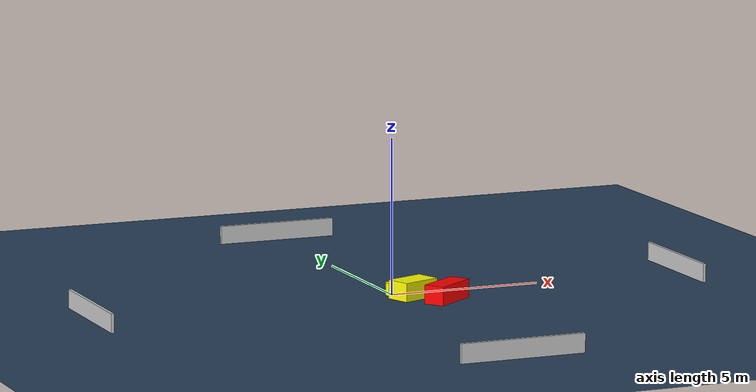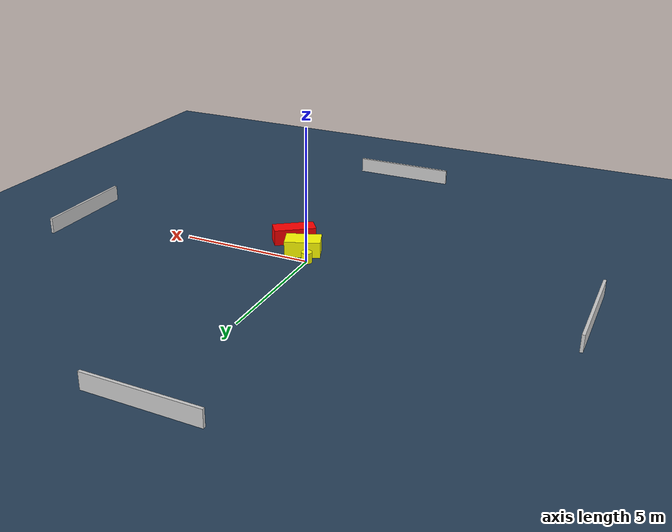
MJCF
<?xml version="1.0" ?>
<mujoco model="generated_environment">
  <option timestep="0.01" integrator="RK4" cone="elliptic"/>
  <default>
    <geom density="1"/>
  </default>
  <asset>
    <texture builtin="gradient" height="3072" name="skybox" rgb1="0.3 0.5 0.7" rgb2="0 0 0" type="skybox" width="512"/>
    <texture builtin="checker" height="300" name="groundplane" rgb1="0.2 0.3 0.4" rgb2="0.1 0.2 0.3" type="2d" width="300"/>
    <material name="groundplane" reflectance="0.2" texrepeat="5 5" texture="groundplane"/>
  </asset>
  <worldbody>
    <light dir="0 0 -1" directional="true" pos="0 0 1.5"/>
    <geom condim="3" friction="0.5 0.005 0.001" material="groundplane" name="floor" pos="0 0 0" size="0 0 0.05" type="plane"/>
    <body name="walls">
      <geom name="wall_1" condim="4" pos="-10.0 0.0 0.3" rgba="0.800000011920929 0.800000011920929 0.800000011920929 1.0" size="0.05 2.0 0.3" type="box"/>
      <geom name="wall_2" condim="4" pos="10.0 0.0 0.3" rgba="0.800000011920929 0.800000011920929 0.800000011920929 1.0" size="0.05 2.0 0.3" type="box"/>
      <geom name="wall_3" condim="4" pos="0.0 -10.0 0.3" rgba="0.800000011920929 0.800000011920929 0.800000011920929 1.0" size="2.0 0.05 0.3" type="box"/>
      <geom name="wall_4" condim="4" pos="0.0 10.0 0.3" rgba="0.800000011920929 0.800000011920929 0.800000011920929 1.0" size="2.0 0.05 0.3" type="box"/>
    </body>
    <body name="robot">
      <joint name="joint_x" type="slide" pos="0 0 0" axis="1 0 0"/>
      <joint name="joint_y" type="slide" pos="0 0 0" axis="0 1 0"/>
      <geom name="robot" type="cylinder" pos="0.0 0.0 0.2" size="0.2 0.2 0.0" mass="5.0" friction="1.0 0.005 0.0001" condim="4" rgba="1.0 1.0 0.0 1.0"/>
    </body>
    <body name="obstacle_1_movable">
      <geom name="obstacle_1_movable" condim="4" pos="0.4540377692197937 -0.6292594918747236 0.3" euler="0 0 200.59592763048917" friction="0.0 0.005 0.001" rgba="1.0 1.0 0.0 1.0" size="0.659062345572947 0.40515689561111257 0.3" type="box" mass="0.1"/>
      <joint type="free"/>
    </body>
    <body name="obstacle_2_static">
      <geom name="obstacle_2_static" condim="4" pos="1.2533384427240366 -1.4727935681672684 0.3" euler="0 0 126.22259955444358" friction="0.0 0.005 0.001" rgba="1.0 0.0 0.0 1.0" size="0.3353893318226621 0.7931928162395614 0.3" type="box"/>
    </body>
  </worldbody>
  <actuator>
    <motor name="actuator_x" joint="joint_x" gear="1" ctrlrange="-1 1"/>
    <motor name="actuator_y" joint="joint_y" gear="1" ctrlrange="-1 1"/>
  </actuator>
</mujoco>
